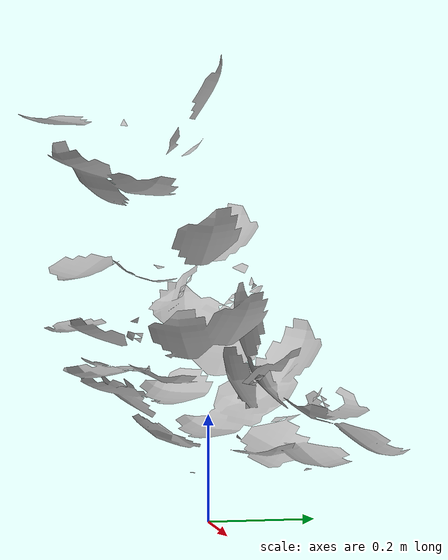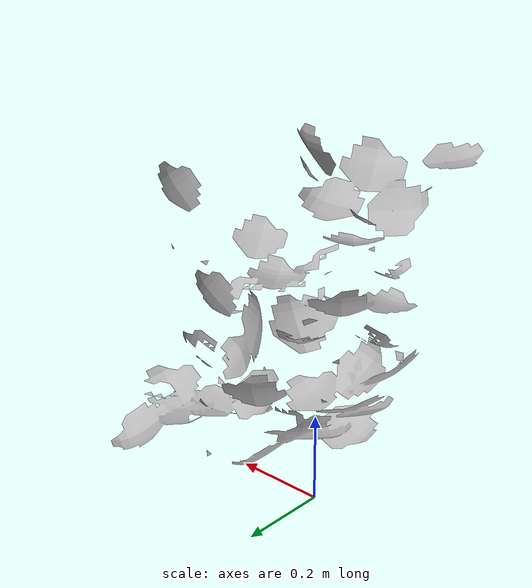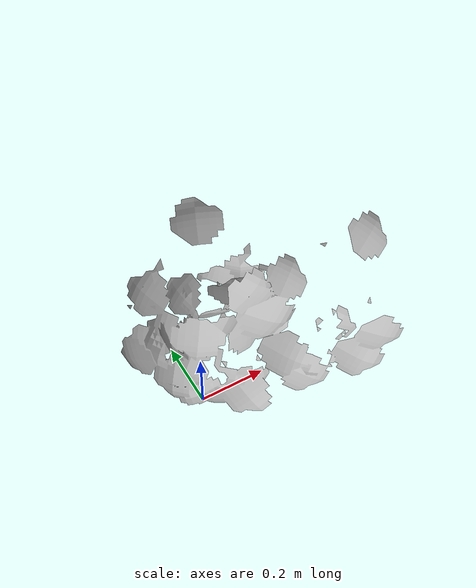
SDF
<?xml version="1.0" ?>
<sdf version="1.9">
  <model name="soybean_plant">
    <!-- Static plant — no physics collision, just a visual. -->
    <static>true</static>
    <link name="base_link">
      <visual name="visual_50d">
        <geometry>
          <mesh>
            <uri>meshes/soybean_50d.obj</uri>
          </mesh>
        </geometry>
      </visual>
    </link>
  </model>
</sdf>
